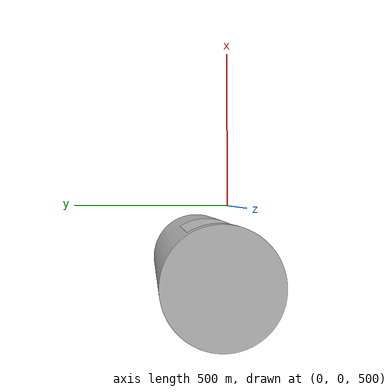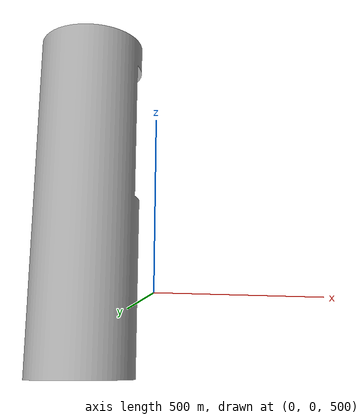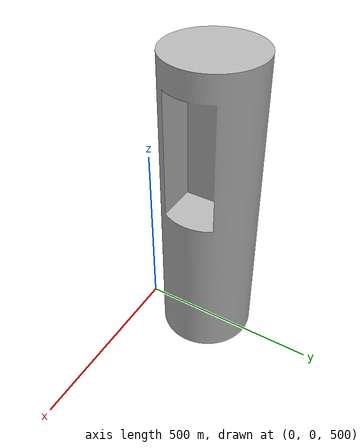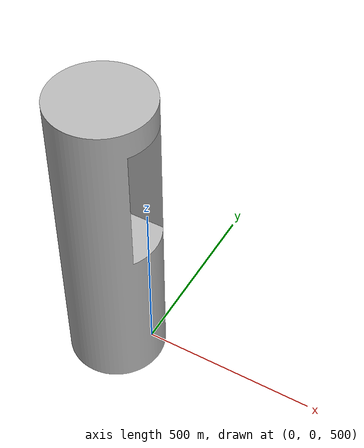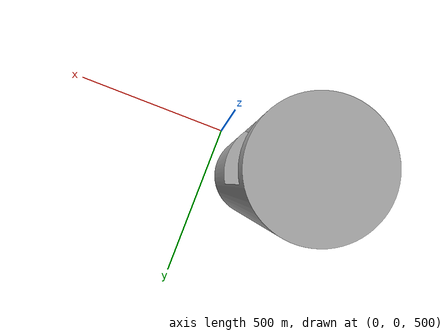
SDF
<sdf version="1.7">
  <model name="simple_water_machine">
    <static>true</static>
    <link name="link">
      <visual name="visual">
        <geometry>
          <mesh>
            <uri>meshes/model.stl</uri>
          </mesh>
        </geometry>
      </visual>
      <collision name="collision">
        <geometry>
          <mesh>
            <uri>meshes/model.stl</uri>
          </mesh>
       </geometry>
      </collision>
    </link>
  </model>
</sdf>
